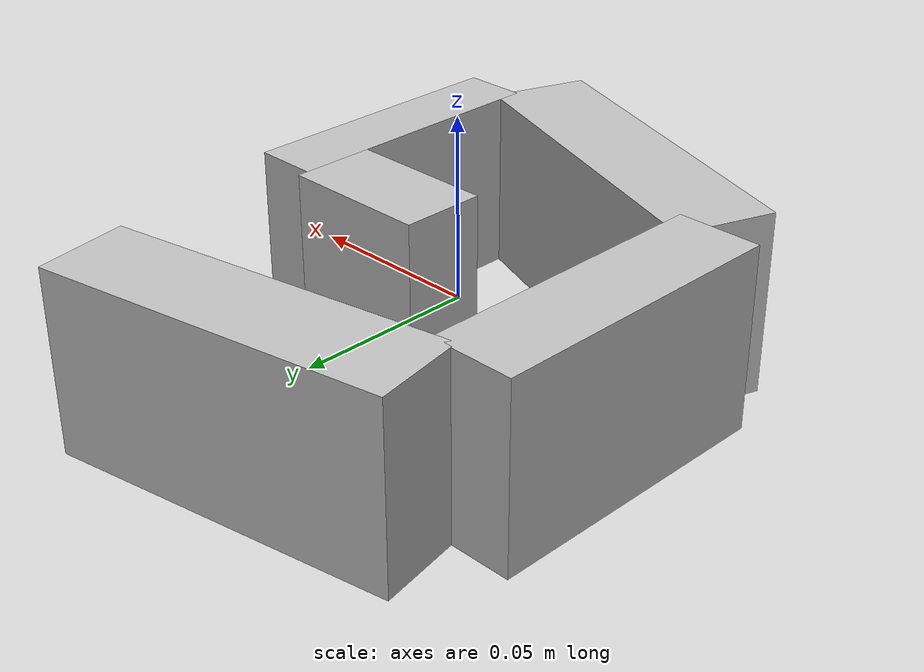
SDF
<?xml version="1.0"?>
<sdf version="1.7">
  <model name="G_shape_video">
    <link name="G_shape_video">
      <inertial>
        <pose>-0.003286 -0.000308 -0.000230 0 0 0</pose>
        <mass>0.05</mass>
        <inertia>
          <ixx>0.000142585105</ixx>
          <iyy>8.65434624e-05</iyy>
          <izz>0.00020644237</izz>
          <ixy>1.14590113e-05</ixy>
          <ixz>-3.77873301e-08</ixz>
          <iyz>-3.54237911e-09</iyz>
        </inertia>
      </inertial>
      <visual name="box_0">
        <pose>0.052140 -0.027220 -0.000230 0 0 -1.570800</pose>
        <geometry>
          <box><size>0.080000 0.018000 0.052170</size></box>
        </geometry>
        <material>
          <diffuse>0.75 0.75 0.75 1</diffuse>
        </material>
      </visual>
      <collision name="box_0_volume">
        <pose>0.052140 -0.027220 -0.000230 0 0 -1.570800</pose>
        <geometry>
          <box><size>0.080000 0.018000 0.052170</size></box>
        </geometry>
        <drake:proximity_properties>
          <drake:compliant_hydroelastic/>
          <drake:hydroelastic_modulus> 3.0e7 </drake:hydroelastic_modulus>
          <drake:mesh_resolution_hint> 0.02 </drake:mesh_resolution_hint>
          <drake:hunt_crossley_dissipation>10</drake:hunt_crossley_dissipation>
          <drake:mu_dynamic>0.3</drake:mu_dynamic>
        </drake:proximity_properties>
      </collision>
      <visual name="box_1">
        <pose>-0.053860 0.006780 -0.000230 0 0 1.570800</pose>
        <geometry>
          <box><size>0.086000 0.024000 0.052170</size></box>
        </geometry>
        <material>
          <diffuse>0.75 0.75 0.75 1</diffuse>
        </material>
      </visual>
      <collision name="box_1_volume">
        <pose>-0.053860 0.006780 -0.000230 0 0 1.570800</pose>
        <geometry>
          <box><size>0.086000 0.024000 0.052170</size></box>
        </geometry>
        <drake:proximity_properties>
          <drake:compliant_hydroelastic/>
          <drake:hydroelastic_modulus> 3.0e7 </drake:hydroelastic_modulus>
          <drake:mesh_resolution_hint> 0.02 </drake:mesh_resolution_hint>
          <drake:hunt_crossley_dissipation>10</drake:hunt_crossley_dissipation>
          <drake:mu_dynamic>0.3</drake:mu_dynamic>
        </drake:proximity_properties>
      </collision>
      <visual name="box_2">
        <pose>-0.005730 -0.057690 -0.000230 0 0 -0.349070</pose>
        <geometry>
          <box><size>0.101000 0.028500 0.052170</size></box>
        </geometry>
        <material>
          <diffuse>0.75 0.75 0.75 1</diffuse>
        </material>
      </visual>
      <collision name="box_2_volume">
        <pose>-0.005730 -0.057690 -0.000230 0 0 -0.349070</pose>
        <geometry>
          <box><size>0.101000 0.028500 0.052170</size></box>
        </geometry>
        <drake:proximity_properties>
          <drake:compliant_hydroelastic/>
          <drake:hydroelastic_modulus> 3.0e7 </drake:hydroelastic_modulus>
          <drake:mesh_resolution_hint> 0.02 </drake:mesh_resolution_hint>
          <drake:hunt_crossley_dissipation>10</drake:hunt_crossley_dissipation>
          <drake:mu_dynamic>0.3</drake:mu_dynamic>
        </drake:proximity_properties>
      </collision>
      <visual name="box_3">
        <pose>-0.001030 0.069570 -0.000230 0 0 -1.384260</pose>
        <geometry>
          <box><size>0.026500 0.100000 0.052170</size></box>
        </geometry>
        <material>
          <diffuse>0.75 0.75 0.75 1</diffuse>
        </material>
      </visual>
      <collision name="box_3_volume">
        <pose>-0.001030 0.069570 -0.000230 0 0 -1.384260</pose>
        <geometry>
          <box><size>0.026500 0.100000 0.052170</size></box>
        </geometry>
        <drake:proximity_properties>
          <drake:compliant_hydroelastic/>
          <drake:hydroelastic_modulus> 3.0e7 </drake:hydroelastic_modulus>
          <drake:mesh_resolution_hint> 0.02 </drake:mesh_resolution_hint>
          <drake:hunt_crossley_dissipation>10</drake:hunt_crossley_dissipation>
          <drake:mu_dynamic>0.3</drake:mu_dynamic>
        </drake:proximity_properties>
      </collision>
      <visual name="box_4">
        <pose>0.022140 0.003780 -0.000230 0 0 -1.570800</pose>
        <geometry>
          <box><size>0.024000 0.042000 0.052170</size></box>
        </geometry>
        <material>
          <diffuse>0.75 0.75 0.75 1</diffuse>
        </material>
      </visual>
      <collision name="box_4_volume">
        <pose>0.022140 0.003780 -0.000230 0 0 -1.570800</pose>
        <geometry>
          <box><size>0.024000 0.042000 0.052170</size></box>
        </geometry>
        <drake:proximity_properties>
          <drake:compliant_hydroelastic/>
          <drake:hydroelastic_modulus> 3.0e7 </drake:hydroelastic_modulus>
          <drake:mesh_resolution_hint> 0.02 </drake:mesh_resolution_hint>
          <drake:hunt_crossley_dissipation>10</drake:hunt_crossley_dissipation>
          <drake:mu_dynamic>0.3</drake:mu_dynamic>
        </drake:proximity_properties>
      </collision>
    </link>
  </model>
</sdf>
